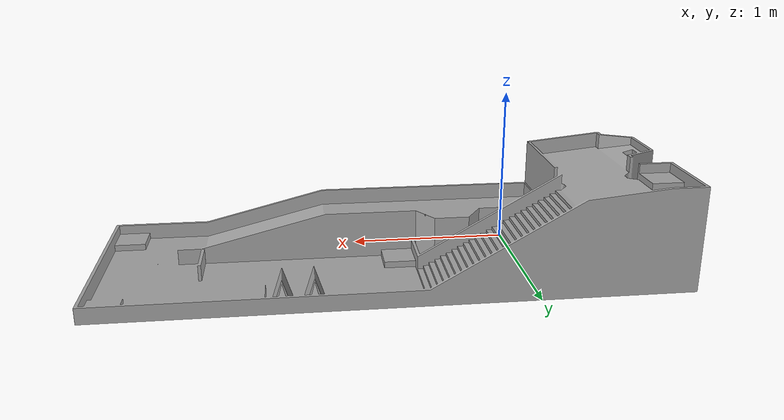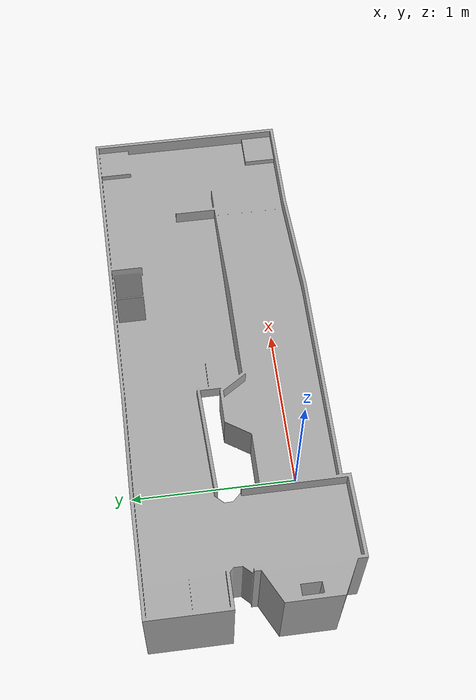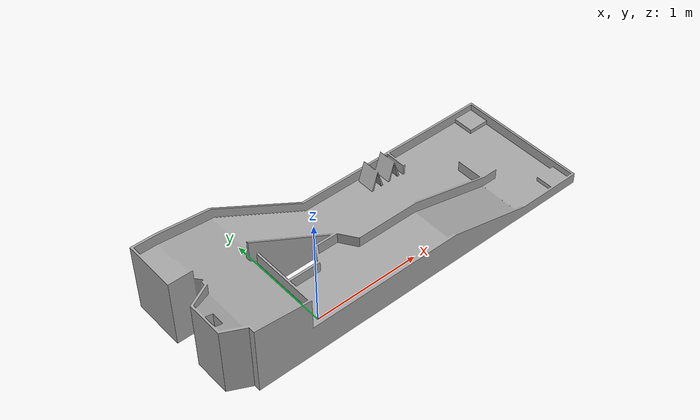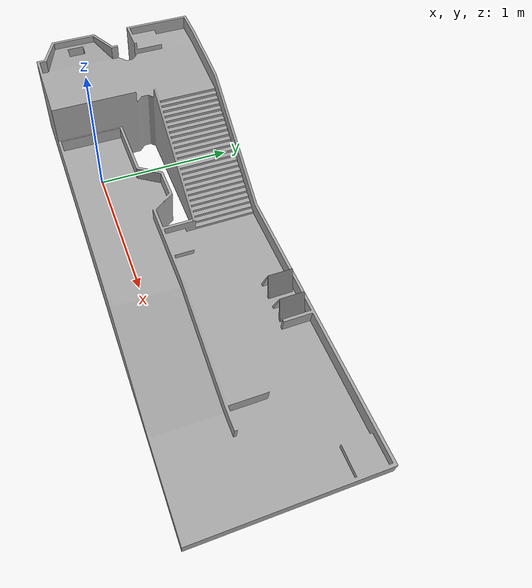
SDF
<?xml version="1.0"?>
<sdf version="1.7">

  <world name="arena_world">

    <include>
      <uri>model://arena_kri</uri>
    </include>

  </world>

</sdf>

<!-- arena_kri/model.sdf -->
<sdf version="1.7">

  <model name="arena_kri">

    <static>true</static>

    <link name="arena_link">

      <visual name="visual">
      <geometry>
        <mesh>
          <uri>model://arena_kri/meshes/arena_kri.stl</uri>
          <scale>1 1 1</scale>
        </mesh>
      </geometry>

      <material>
        <ambient>0.65 0.65 0.65 1</ambient>
        <diffuse>0.65 0.65 0.65 1</diffuse>
        <specular>0.02 0.02 0.02 1</specular>
      </material>

    </visual>

      <collision name="collision">
        <geometry>
          <mesh>
            <uri>model://arena_kri/meshes/arena_kri.stl</uri>
            <scale>1 1 1</scale>
          </mesh>
        </geometry>
      </collision>

    </link>

  </model>

</sdf>
